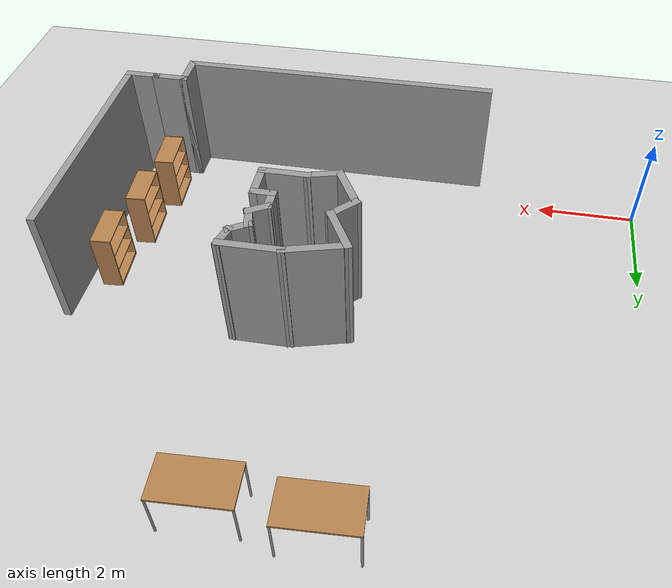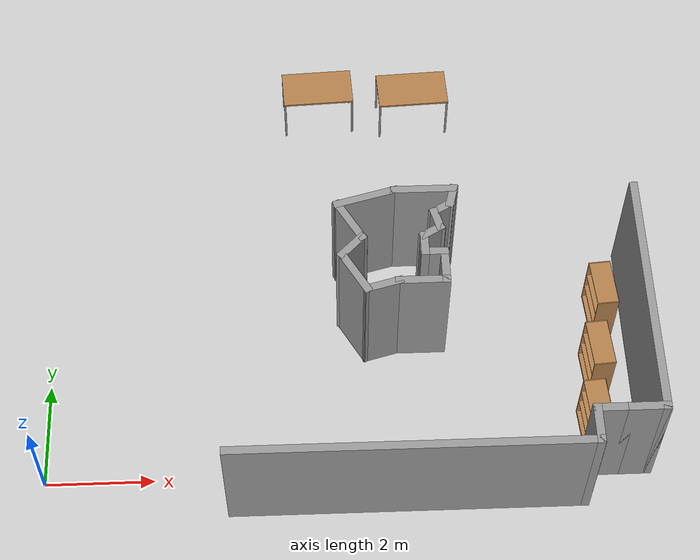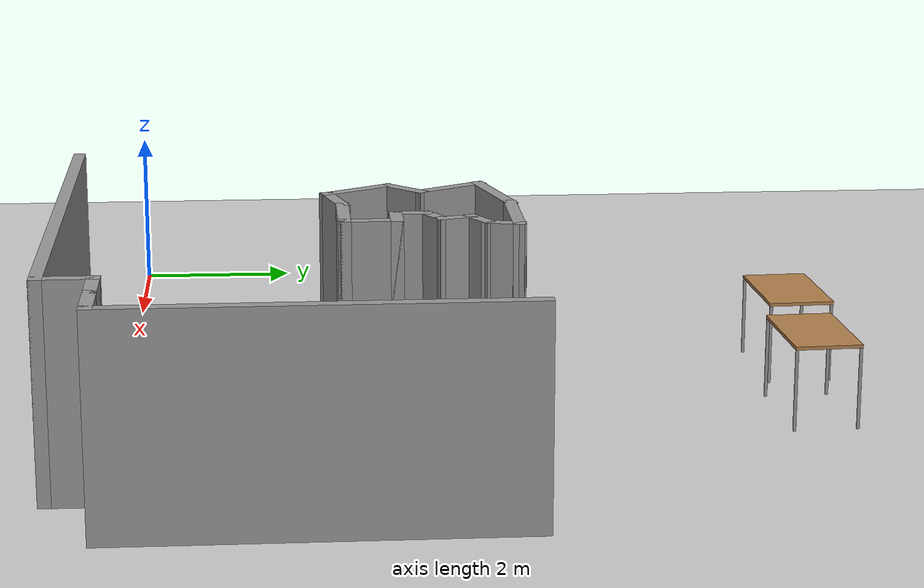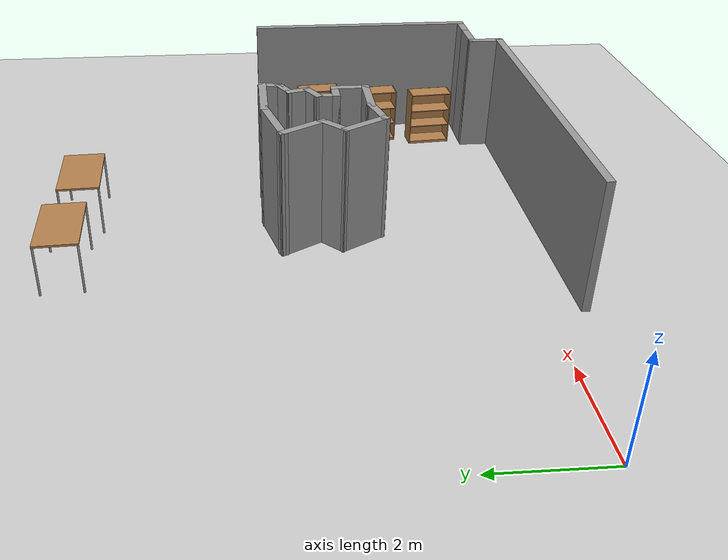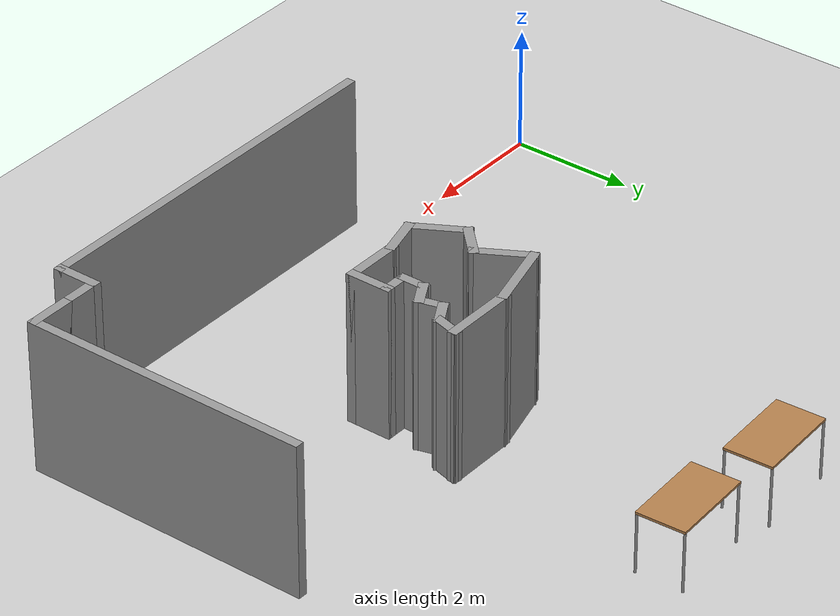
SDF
<sdf version="1.6">
 <world name="default">
  <model name="ground_plane">
   <static>1</static>
   <link name="link">
    <collision name="collision">
     <geometry><plane><normal>0 0 1</normal><size>100 100</size></plane></geometry>
     <surface><friction><ode><mu>100</mu><mu2>50</mu2></ode></friction></surface>
    </collision>
    <visual name="visual">
     <cast_shadows>0</cast_shadows>
     <geometry><plane><normal>0 0 1</normal><size>100 100</size></plane></geometry>
     <material>
      <script><uri>file://media/materials/scripts/gazebo.material</uri><name>Gazebo/Grey</name></script>
     </material>
    </visual>
   </link>
  </model>
  <model name="table_clone_1_clone">
   <static>0</static>
   <link name="link">
    <collision name="surface">
     <pose>0 0 1 0 -0 0</pose>
     <geometry><box><size>1.5 0.8 0.03</size></box></geometry>
     <surface><friction><ode><mu>0.6</mu><mu2>0.6</mu2></ode></friction></surface>
    </collision>
    <visual name="visual1">
     <pose>0 0 1 0 -0 0</pose>
     <geometry><box><size>1.4 0.8 0.04</size></box></geometry>
     <material>
      <script><uri>file://media/materials/scripts/gazebo.material</uri><name>Gazebo/Wood</name></script>
     </material>
    </visual>
    <collision name="front_left_leg">
     <pose>0.68 0.38 0.5 0 -0 0</pose>
     <geometry><cylinder><radius>0.02</radius><length>1</length></cylinder></geometry>
    </collision>
    <visual name="front_left_leg">
     <pose>0.68 0.38 0.5 0 -0 0</pose>
     <geometry><cylinder><radius>0.02</radius><length>1</length></cylinder></geometry>
     <material>
      <script><uri>file://media/materials/scripts/gazebo.material</uri><name>Gazebo/Grey</name></script>
     </material>
    </visual>
    <collision name="front_right_leg">
     <pose>0.68 -0.38 0.5 0 -0 0</pose>
     <geometry><cylinder><radius>0.02</radius><length>1</length></cylinder></geometry>
    </collision>
    <visual name="front_right_leg">
     <pose>0.68 -0.38 0.5 0 -0 0</pose>
     <geometry><cylinder><radius>0.02</radius><length>1</length></cylinder></geometry>
     <material>
      <script><uri>file://media/materials/scripts/gazebo.material</uri><name>Gazebo/Grey</name></script>
     </material>
    </visual>
    <collision name="back_right_leg">
     <pose>-0.68 -0.38 0.5 0 -0 0</pose>
     <geometry><cylinder><radius>0.02</radius><length>1</length></cylinder></geometry>
    </collision>
    <visual name="back_right_leg">
     <pose>-0.68 -0.38 0.5 0 -0 0</pose>
     <geometry><cylinder><radius>0.02</radius><length>1</length></cylinder></geometry>
     <material>
      <script><uri>file://media/materials/scripts/gazebo.material</uri><name>Gazebo/Grey</name></script>
     </material>
    </visual>
    <collision name="back_left_leg">
     <pose>-0.68 0.38 0.5 0 -0 0</pose>
     <geometry><cylinder><radius>0.02</radius><length>1</length></cylinder></geometry>
    </collision>
    <visual name="back_left_leg">
     <pose>-0.68 0.38 0.5 0 -0 0</pose>
     <geometry><cylinder><radius>0.02</radius><length>1</length></cylinder></geometry>
     <material>
      <script><uri>file://media/materials/scripts/gazebo.material</uri><name>Gazebo/Grey</name></script>
     </material>
    </visual>
    <inertial>
     <inertia><ixx>1</ixx><ixy>0</ixy><ixz>0</ixz><iyy>1</iyy><iyz>0</iyz><izz>1</izz></inertia>
     <mass>1</mass>
    </inertial>
   </link>
   <pose>5.17274 8.24378 -1e-05 0 -0 0.048714</pose>
  </model>
  <model name="table_clone_1_clone_0">
   <static>0</static>
   <link name="link">
    <collision name="surface">
     <pose>0 0 1 0 -0 0</pose>
     <geometry><box><size>1.5 0.8 0.03</size></box></geometry>
     <surface><friction><ode><mu>0.6</mu><mu2>0.6</mu2></ode></friction></surface>
    </collision>
    <visual name="visual1">
     <pose>0 0 1 0 -0 0</pose>
     <geometry><box><size>1.4 0.8 0.04</size></box></geometry>
     <material>
      <script><uri>file://media/materials/scripts/gazebo.material</uri><name>Gazebo/Wood</name></script>
     </material>
    </visual>
    <collision name="front_left_leg">
     <pose>0.68 0.38 0.5 0 -0 0</pose>
     <geometry><cylinder><radius>0.02</radius><length>1</length></cylinder></geometry>
    </collision>
    <visual name="front_left_leg">
     <pose>0.68 0.38 0.5 0 -0 0</pose>
     <geometry><cylinder><radius>0.02</radius><length>1</length></cylinder></geometry>
     <material>
      <script><uri>file://media/materials/scripts/gazebo.material</uri><name>Gazebo/Grey</name></script>
     </material>
    </visual>
    <collision name="front_right_leg">
     <pose>0.68 -0.38 0.5 0 -0 0</pose>
     <geometry><cylinder><radius>0.02</radius><length>1</length></cylinder></geometry>
    </collision>
    <visual name="front_right_leg">
     <pose>0.68 -0.38 0.5 0 -0 0</pose>
     <geometry><cylinder><radius>0.02</radius><length>1</length></cylinder></geometry>
     <material>
      <script><uri>file://media/materials/scripts/gazebo.material</uri><name>Gazebo/Grey</name></script>
     </material>
    </visual>
    <collision name="back_right_leg">
     <pose>-0.68 -0.38 0.5 0 -0 0</pose>
     <geometry><cylinder><radius>0.02</radius><length>1</length></cylinder></geometry>
    </collision>
    <visual name="back_right_leg">
     <pose>-0.68 -0.38 0.5 0 -0 0</pose>
     <geometry><cylinder><radius>0.02</radius><length>1</length></cylinder></geometry>
     <material>
      <script><uri>file://media/materials/scripts/gazebo.material</uri><name>Gazebo/Grey</name></script>
     </material>
    </visual>
    <collision name="back_left_leg">
     <pose>-0.68 0.38 0.5 0 -0 0</pose>
     <geometry><cylinder><radius>0.02</radius><length>1</length></cylinder></geometry>
    </collision>
    <visual name="back_left_leg">
     <pose>-0.68 0.38 0.5 0 -0 0</pose>
     <geometry><cylinder><radius>0.02</radius><length>1</length></cylinder></geometry>
     <material>
      <script><uri>file://media/materials/scripts/gazebo.material</uri><name>Gazebo/Grey</name></script>
     </material>
    </visual>
    <inertial>
     <inertia><ixx>1</ixx><ixy>0</ixy><ixz>0</ixz><iyy>1</iyy><iyz>0</iyz><izz>1</izz></inertia>
     <mass>1</mass>
    </inertial>
   </link>
   <pose>7.09873 8.15476 -1e-06 0 1e-06 0.048714</pose>
  </model>
  <model name="bookshelf">
   <static>1</static>
   <link name="link">
    <inertial><mass>1</mass></inertial>
    <collision name="back">
     <pose>0 0.005 0.6 0 -0 0</pose>
     <geometry><box><size>0.9 0.01 1.2</size></box></geometry>
    </collision>
    <visual name="visual1">
     <pose>0 0.005 0.6 0 -0 0</pose>
     <geometry><box><size>0.9 0.01 1.2</size></box></geometry>
     <material>
      <script><uri>file://media/materials/scripts/gazebo.material</uri><name>Gazebo/Wood</name></script>
     </material>
    </visual>
    <collision name="left_side">
     <pose>0.45 -0.195 0.6 0 -0 0</pose>
     <geometry><box><size>0.02 0.4 1.2</size></box></geometry>
    </collision>
    <visual name="visual2">
     <pose>0.45 -0.195 0.6 0 -0 0</pose>
     <geometry><box><size>0.02 0.4 1.2</size></box></geometry>
     <material>
      <script><uri>file://media/materials/scripts/gazebo.material</uri><name>Gazebo/Wood</name></script>
     </material>
    </visual>
    <collision name="right_side">
     <pose>-0.45 -0.195 0.6 0 -0 0</pose>
     <geometry><box><size>0.02 0.4 1.2</size></box></geometry>
    </collision>
    <visual name="visual3">
     <pose>-0.45 -0.195 0.6 0 -0 0</pose>
     <geometry><box><size>0.02 0.4 1.2</size></box></geometry>
     <material>
      <script><uri>file://media/materials/scripts/gazebo.material</uri><name>Gazebo/Wood</name></script>
     </material>
    </visual>
    <collision name="bottom">
     <pose>0 -0.195 0.03 0 -0 0</pose>
     <geometry><box><size>0.88 0.4 0.06</size></box></geometry>
    </collision>
    <visual name="visual4">
     <pose>0 -0.195 0.03 0 -0 0</pose>
     <geometry><box><size>0.88 0.4 0.06</size></box></geometry>
     <material>
      <script><uri>file://media/materials/scripts/gazebo.material</uri><name>Gazebo/Wood</name></script>
     </material>
    </visual>
    <collision name="top">
     <pose>0 -0.195 1.19 0 -0 0</pose>
     <geometry><box><size>0.88 0.4 0.02</size></box></geometry>
    </collision>
    <visual name="visual5">
     <pose>0 -0.195 1.19 0 -0 0</pose>
     <geometry><box><size>0.88 0.4 0.02</size></box></geometry>
     <material>
      <script><uri>file://media/materials/scripts/gazebo.material</uri><name>Gazebo/Wood</name></script>
     </material>
    </visual>
    <collision name="low_shelf">
     <pose>0 -0.195 0.43 0 -0 0</pose>
     <geometry><box><size>0.88 0.4 0.02</size></box></geometry>
    </collision>
    <visual name="visual6">
     <pose>0 -0.195 0.43 0 -0 0</pose>
     <geometry><box><size>0.88 0.4 0.02</size></box></geometry>
     <material>
      <script><uri>file://media/materials/scripts/gazebo.material</uri><name>Gazebo/Wood</name></script>
     </material>
    </visual>
    <collision name="high_shelf">
     <pose>0 -0.195 0.8 0 -0 0</pose>
     <geometry><box><size>0.88 0.4 0.02</size></box></geometry>
    </collision>
    <visual name="visual7">
     <pose>0 -0.195 0.8 0 -0 0</pose>
     <geometry><box><size>0.88 0.4 0.02</size></box></geometry>
     <material>
      <script><uri>file://media/materials/scripts/gazebo.material</uri><name>Gazebo/Wood</name></script>
     </material>
    </visual>
   </link>
   <pose>10.6229 3.26593 0 0 0 -1.49467</pose>
  </model>
  <model name="bookshelf_clone">
   <static>1</static>
   <link name="link">
    <inertial><mass>1</mass></inertial>
    <collision name="back">
     <pose>0 0.005 0.6 0 -0 0</pose>
     <geometry><box><size>0.9 0.01 1.2</size></box></geometry>
    </collision>
    <visual name="visual1">
     <pose>0 0.005 0.6 0 -0 0</pose>
     <geometry><box><size>0.9 0.01 1.2</size></box></geometry>
     <material>
      <script><uri>file://media/materials/scripts/gazebo.material</uri><name>Gazebo/Wood</name></script>
     </material>
    </visual>
    <collision name="left_side">
     <pose>0.45 -0.195 0.6 0 -0 0</pose>
     <geometry><box><size>0.02 0.4 1.2</size></box></geometry>
    </collision>
    <visual name="visual2">
     <pose>0.45 -0.195 0.6 0 -0 0</pose>
     <geometry><box><size>0.02 0.4 1.2</size></box></geometry>
     <material>
      <script><uri>file://media/materials/scripts/gazebo.material</uri><name>Gazebo/Wood</name></script>
     </material>
    </visual>
    <collision name="right_side">
     <pose>-0.45 -0.195 0.6 0 -0 0</pose>
     <geometry><box><size>0.02 0.4 1.2</size></box></geometry>
    </collision>
    <visual name="visual3">
     <pose>-0.45 -0.195 0.6 0 -0 0</pose>
     <geometry><box><size>0.02 0.4 1.2</size></box></geometry>
     <material>
      <script><uri>file://media/materials/scripts/gazebo.material</uri><name>Gazebo/Wood</name></script>
     </material>
    </visual>
    <collision name="bottom">
     <pose>0 -0.195 0.03 0 -0 0</pose>
     <geometry><box><size>0.88 0.4 0.06</size></box></geometry>
    </collision>
    <visual name="visual4">
     <pose>0 -0.195 0.03 0 -0 0</pose>
     <geometry><box><size>0.88 0.4 0.06</size></box></geometry>
     <material>
      <script><uri>file://media/materials/scripts/gazebo.material</uri><name>Gazebo/Wood</name></script>
     </material>
    </visual>
    <collision name="top">
     <pose>0 -0.195 1.19 0 -0 0</pose>
     <geometry><box><size>0.88 0.4 0.02</size></box></geometry>
    </collision>
    <visual name="visual5">
     <pose>0 -0.195 1.19 0 -0 0</pose>
     <geometry><box><size>0.88 0.4 0.02</size></box></geometry>
     <material>
      <script><uri>file://media/materials/scripts/gazebo.material</uri><name>Gazebo/Wood</name></script>
     </material>
    </visual>
    <collision name="low_shelf">
     <pose>0 -0.195 0.43 0 -0 0</pose>
     <geometry><box><size>0.88 0.4 0.02</size></box></geometry>
    </collision>
    <visual name="visual6">
     <pose>0 -0.195 0.43 0 -0 0</pose>
     <geometry><box><size>0.88 0.4 0.02</size></box></geometry>
     <material>
      <script><uri>file://media/materials/scripts/gazebo.material</uri><name>Gazebo/Wood</name></script>
     </material>
    </visual>
    <collision name="high_shelf">
     <pose>0 -0.195 0.8 0 -0 0</pose>
     <geometry><box><size>0.88 0.4 0.02</size></box></geometry>
    </collision>
    <visual name="visual7">
     <pose>0 -0.195 0.8 0 -0 0</pose>
     <geometry><box><size>0.88 0.4 0.02</size></box></geometry>
     <material>
      <script><uri>file://media/materials/scripts/gazebo.material</uri><name>Gazebo/Wood</name></script>
     </material>
    </visual>
   </link>
   <pose>10.4114 1.97434 0 0 0 -1.49467</pose>
  </model>
  <model name="bookshelf_clone_0">
   <static>1</static>
   <link name="link">
    <inertial><mass>1</mass></inertial>
    <collision name="back">
     <pose>0 0.005 0.6 0 -0 0</pose>
     <geometry><box><size>0.9 0.01 1.2</size></box></geometry>
    </collision>
    <visual name="visual1">
     <pose>0 0.005 0.6 0 -0 0</pose>
     <geometry><box><size>0.9 0.01 1.2</size></box></geometry>
     <material>
      <script><uri>file://media/materials/scripts/gazebo.material</uri><name>Gazebo/Wood</name></script>
     </material>
    </visual>
    <collision name="left_side">
     <pose>0.45 -0.195 0.6 0 -0 0</pose>
     <geometry><box><size>0.02 0.4 1.2</size></box></geometry>
    </collision>
    <visual name="visual2">
     <pose>0.45 -0.195 0.6 0 -0 0</pose>
     <geometry><box><size>0.02 0.4 1.2</size></box></geometry>
     <material>
      <script><uri>file://media/materials/scripts/gazebo.material</uri><name>Gazebo/Wood</name></script>
     </material>
    </visual>
    <collision name="right_side">
     <pose>-0.45 -0.195 0.6 0 -0 0</pose>
     <geometry><box><size>0.02 0.4 1.2</size></box></geometry>
    </collision>
    <visual name="visual3">
     <pose>-0.45 -0.195 0.6 0 -0 0</pose>
     <geometry><box><size>0.02 0.4 1.2</size></box></geometry>
     <material>
      <script><uri>file://media/materials/scripts/gazebo.material</uri><name>Gazebo/Wood</name></script>
     </material>
    </visual>
    <collision name="bottom">
     <pose>0 -0.195 0.03 0 -0 0</pose>
     <geometry><box><size>0.88 0.4 0.06</size></box></geometry>
    </collision>
    <visual name="visual4">
     <pose>0 -0.195 0.03 0 -0 0</pose>
     <geometry><box><size>0.88 0.4 0.06</size></box></geometry>
     <material>
      <script><uri>file://media/materials/scripts/gazebo.material</uri><name>Gazebo/Wood</name></script>
     </material>
    </visual>
    <collision name="top">
     <pose>0 -0.195 1.19 0 -0 0</pose>
     <geometry><box><size>0.88 0.4 0.02</size></box></geometry>
    </collision>
    <visual name="visual5">
     <pose>0 -0.195 1.19 0 -0 0</pose>
     <geometry><box><size>0.88 0.4 0.02</size></box></geometry>
     <material>
      <script><uri>file://media/materials/scripts/gazebo.material</uri><name>Gazebo/Wood</name></script>
     </material>
    </visual>
    <collision name="low_shelf">
     <pose>0 -0.195 0.43 0 -0 0</pose>
     <geometry><box><size>0.88 0.4 0.02</size></box></geometry>
    </collision>
    <visual name="visual6">
     <pose>0 -0.195 0.43 0 -0 0</pose>
     <geometry><box><size>0.88 0.4 0.02</size></box></geometry>
     <material>
      <script><uri>file://media/materials/scripts/gazebo.material</uri><name>Gazebo/Wood</name></script>
     </material>
    </visual>
    <collision name="high_shelf">
     <pose>0 -0.195 0.8 0 -0 0</pose>
     <geometry><box><size>0.88 0.4 0.02</size></box></geometry>
    </collision>
    <visual name="visual7">
     <pose>0 -0.195 0.8 0 -0 0</pose>
     <geometry><box><size>0.88 0.4 0.02</size></box></geometry>
     <material>
      <script><uri>file://media/materials/scripts/gazebo.material</uri><name>Gazebo/Wood</name></script>
     </material>
    </visual>
   </link>
   <pose>10.2428 0.749843 0 0 0 -1.49467</pose>
  </model>
  <model name="paredes_simplepilab_0">
   <link name="Wall_19">
    <pose>2.05592 -6.19172 0 0 -0 0</pose>
    <visual name="Wall_19_Visual">
     <pose>0 0 1.25 0 -0 0</pose>
     <geometry><box><size>6.5 0.15 2.5</size></box></geometry>
     <material>
      <script><uri>file://media/materials/scripts/gazebo.material</uri><name>Gazebo/Grey</name></script>
      <ambient>1 1 1 1</ambient>
      <diffuse>0.7 0.7 0.7 1</diffuse>
      <specular>0.01 0.01 0.01 1</specular>
      <emissive>0 0 0 1</emissive>
     </material>
    </visual>
    <collision name="Wall_19_Collision">
     <pose>0 0 1.25 0 -0 0</pose>
     <geometry><box><size>6.5 0.15 2.5</size></box></geometry>
     <surface>
      <friction>
       <ode><mu>1</mu><mu2>1</mu2><fdir1>0 0 0</fdir1><slip1>0</slip1><slip2>0</slip2></ode>
       <torsional>
        <coefficient>1</coefficient>
        <patch_radius>0</patch_radius>
        <surface_radius>0</surface_radius>
        <use_patch_radius>1</use_patch_radius>
        <ode><slip>0</slip></ode>
       </torsional>
      </friction>
      <bounce><restitution_coefficient>0</restitution_coefficient><threshold>1e+06</threshold></bounce>
      <contact>
       <collide_without_contact>0</collide_without_contact>
       <collide_without_contact_bitmask>1</collide_without_contact_bitmask>
       <collide_bitmask>1</collide_bitmask>
       <ode>
        <soft_cfm>0</soft_cfm>
        <soft_erp>0.2</soft_erp>
        <kp>1e+13</kp>
        <kd>1</kd>
        <max_vel>0.01</max_vel>
        <min_depth>0</min_depth>
       </ode>
       <bullet>
        <split_impulse>1</split_impulse>
        <split_impulse_penetration_threshold>-0.01</split_impulse_penetration_threshold>
        <soft_cfm>0</soft_cfm>
        <soft_erp>0.2</soft_erp>
        <kp>1e+13</kp>
        <kd>1</kd>
       </bullet>
      </contact>
     </surface>
    </collision>
   </link>
   <link name="Wall_20">
    <pose>5.23092 -5.89172 0 0 -0 1.5708</pose>
    <visual name="Wall_20_Visual">
     <pose>0 0 1.25 0 -0 0</pose>
     <geometry><box><size>0.75 0.15 2.5</size></box></geometry>
     <material>
      <script><uri>file://media/materials/scripts/gazebo.material</uri><name>Gazebo/Grey</name></script>
      <ambient>1 1 1 1</ambient>
      <diffuse>0.7 0.7 0.7 1</diffuse>
      <specular>0.01 0.01 0.01 1</specular>
      <emissive>0 0 0 1</emissive>
     </material>
    </visual>
    <collision name="Wall_20_Collision">
     <pose>0 0 1.25 0 -0 0</pose>
     <geometry><box><size>0.75 0.15 2.5</size></box></geometry>
     <surface>
      <friction>
       <ode><mu>1</mu><mu2>1</mu2><fdir1>0 0 0</fdir1><slip1>0</slip1><slip2>0</slip2></ode>
       <torsional>
        <coefficient>1</coefficient>
        <patch_radius>0</patch_radius>
        <surface_radius>0</surface_radius>
        <use_patch_radius>1</use_patch_radius>
        <ode><slip>0</slip></ode>
       </torsional>
      </friction>
      <bounce><restitution_coefficient>0</restitution_coefficient><threshold>1e+06</threshold></bounce>
      <contact>
       <collide_without_contact>0</collide_without_contact>
       <collide_without_contact_bitmask>1</collide_without_contact_bitmask>
       <collide_bitmask>1</collide_bitmask>
       <ode>
        <soft_cfm>0</soft_cfm>
        <soft_erp>0.2</soft_erp>
        <kp>1e+13</kp>
        <kd>1</kd>
        <max_vel>0.01</max_vel>
        <min_depth>0</min_depth>
       </ode>
       <bullet>
        <split_impulse>1</split_impulse>
        <split_impulse_penetration_threshold>-0.01</split_impulse_penetration_threshold>
        <soft_cfm>0</soft_cfm>
        <soft_erp>0.2</soft_erp>
        <kp>1e+13</kp>
        <kd>1</kd>
       </bullet>
      </contact>
     </surface>
    </collision>
   </link>
   <link name="Wall_21">
    <pose>5.53092 -5.59172 0 0 -0 0</pose>
    <visual name="Wall_21_Visual">
     <pose>0 0 1.25 0 -0 0</pose>
     <geometry><box><size>0.75 0.15 2.5</size></box></geometry>
     <material>
      <script><uri>file://media/materials/scripts/gazebo.material</uri><name>Gazebo/Grey</name></script>
      <ambient>1 1 1 1</ambient>
      <diffuse>0.7 0.7 0.7 1</diffuse>
      <specular>0.01 0.01 0.01 1</specular>
      <emissive>0 0 0 1</emissive>
     </material>
    </visual>
    <collision name="Wall_21_Collision">
     <pose>0 0 1.25 0 -0 0</pose>
     <geometry><box><size>0.75 0.15 2.5</size></box></geometry>
     <surface>
      <friction>
       <ode><mu>1</mu><mu2>1</mu2><fdir1>0 0 0</fdir1><slip1>0</slip1><slip2>0</slip2></ode>
       <torsional>
        <coefficient>1</coefficient>
        <patch_radius>0</patch_radius>
        <surface_radius>0</surface_radius>
        <use_patch_radius>1</use_patch_radius>
        <ode><slip>0</slip></ode>
       </torsional>
      </friction>
      <bounce><restitution_coefficient>0</restitution_coefficient><threshold>1e+06</threshold></bounce>
      <contact>
       <collide_without_contact>0</collide_without_contact>
       <collide_without_contact_bitmask>1</collide_without_contact_bitmask>
       <collide_bitmask>1</collide_bitmask>
       <ode>
        <soft_cfm>0</soft_cfm>
        <soft_erp>0.2</soft_erp>
        <kp>1e+13</kp>
        <kd>1</kd>
        <max_vel>0.01</max_vel>
        <min_depth>0</min_depth>
       </ode>
       <bullet>
        <split_impulse>1</split_impulse>
        <split_impulse_penetration_threshold>-0.01</split_impulse_penetration_threshold>
        <soft_cfm>0</soft_cfm>
        <soft_erp>0.2</soft_erp>
        <kp>1e+13</kp>
        <kd>1</kd>
       </bullet>
      </contact>
     </surface>
    </collision>
   </link>
   <link name="Wall_22">
    <pose>6.13092 -5.59172 0 0 -0 0</pose>
    <visual name="Wall_22_Visual">
     <pose>0 0 1.25 0 -0 0</pose>
     <geometry><box><size>0.75 0.15 2.5</size></box></geometry>
     <material>
      <script><uri>file://media/materials/scripts/gazebo.material</uri><name>Gazebo/Grey</name></script>
      <ambient>1 1 1 1</ambient>
      <diffuse>0.7 0.7 0.7 1</diffuse>
      <specular>0.01 0.01 0.01 1</specular>
      <emissive>0 0 0 1</emissive>
     </material>
    </visual>
    <collision name="Wall_22_Collision">
     <pose>0 0 1.25 0 -0 0</pose>
     <geometry><box><size>0.75 0.15 2.5</size></box></geometry>
     <surface>
      <friction>
       <ode><mu>1</mu><mu2>1</mu2><fdir1>0 0 0</fdir1><slip1>0</slip1><slip2>0</slip2></ode>
       <torsional>
        <coefficient>1</coefficient>
        <patch_radius>0</patch_radius>
        <surface_radius>0</surface_radius>
        <use_patch_radius>1</use_patch_radius>
        <ode><slip>0</slip></ode>
       </torsional>
      </friction>
      <bounce><restitution_coefficient>0</restitution_coefficient><threshold>1e+06</threshold></bounce>
      <contact>
       <collide_without_contact>0</collide_without_contact>
       <collide_without_contact_bitmask>1</collide_without_contact_bitmask>
       <collide_bitmask>1</collide_bitmask>
       <ode>
        <soft_cfm>0</soft_cfm>
        <soft_erp>0.2</soft_erp>
        <kp>1e+13</kp>
        <kd>1</kd>
        <max_vel>0.01</max_vel>
        <min_depth>0</min_depth>
       </ode>
       <bullet>
        <split_impulse>1</split_impulse>
        <split_impulse_penetration_threshold>-0.01</split_impulse_penetration_threshold>
        <soft_cfm>0</soft_cfm>
        <soft_erp>0.2</soft_erp>
        <kp>1e+13</kp>
        <kd>1</kd>
       </bullet>
      </contact>
     </surface>
    </collision>
   </link>
   <link name="Wall_23">
    <pose>6.43092 -3.29172 0 0 -0 1.5708</pose>
    <visual name="Wall_23_Visual">
     <pose>0 0 1.25 0 -0 0</pose>
     <geometry><box><size>4.75 0.15 2.5</size></box></geometry>
     <material>
      <script><uri>file://media/materials/scripts/gazebo.material</uri><name>Gazebo/Grey</name></script>
      <ambient>1 1 1 1</ambient>
      <diffuse>0.7 0.7 0.7 1</diffuse>
      <specular>0.01 0.01 0.01 1</specular>
      <emissive>0 0 0 1</emissive>
     </material>
    </visual>
    <collision name="Wall_23_Collision">
     <pose>0 0 1.25 0 -0 0</pose>
     <geometry><box><size>4.75 0.15 2.5</size></box></geometry>
     <surface>
      <friction>
       <ode><mu>1</mu><mu2>1</mu2><fdir1>0 0 0</fdir1><slip1>0</slip1><slip2>0</slip2></ode>
       <torsional>
        <coefficient>1</coefficient>
        <patch_radius>0</patch_radius>
        <surface_radius>0</surface_radius>
        <use_patch_radius>1</use_patch_radius>
        <ode><slip>0</slip></ode>
       </torsional>
      </friction>
      <bounce><restitution_coefficient>0</restitution_coefficient><threshold>1e+06</threshold></bounce>
      <contact>
       <collide_without_contact>0</collide_without_contact>
       <collide_without_contact_bitmask>1</collide_without_contact_bitmask>
       <collide_bitmask>1</collide_bitmask>
       <ode>
        <soft_cfm>0</soft_cfm>
        <soft_erp>0.2</soft_erp>
        <kp>1e+13</kp>
        <kd>1</kd>
        <max_vel>0.01</max_vel>
        <min_depth>0</min_depth>
       </ode>
       <bullet>
        <split_impulse>1</split_impulse>
        <split_impulse_penetration_threshold>-0.01</split_impulse_penetration_threshold>
        <soft_cfm>0</soft_cfm>
        <soft_erp>0.2</soft_erp>
        <kp>1e+13</kp>
        <kd>1</kd>
       </bullet>
      </contact>
     </surface>
    </collision>
   </link>
   <static>1</static>
   <pose>4.53146 5.52753 0 0 -0 0</pose>
  </model>
  <model name="episimplelab_obstaculoscentro">
   <pose>6.53838 3.52254 0 0 -0 0</pose>
   <link name="Wall_66">
    <collision name="Wall_66_Collision">
     <geometry><box><size>1 0.15 2.5</size></box></geometry>
     <pose>0 0 1.25 0 -0 0</pose>
    </collision>
    <visual name="Wall_66_Visual">
     <pose>0 0 1.25 0 -0 0</pose>
     <geometry><box><size>1 0.15 2.5</size></box></geometry>
     <material>
      <script><uri>file://media/materials/scripts/gazebo.material</uri><name>Gazebo/Grey</name></script>
      <ambient>0.392157 0.388235 0.423529 1</ambient>
     </material>
    </visual>
    <pose>-0.863461 0.418256 0 0 -0 2.0944</pose>
   </link>
   <link name="Wall_67">
    <collision name="Wall_67_Collision">
     <geometry><box><size>1.25 0.15 2.5</size></box></geometry>
     <pose>0 0 1.25 0 -0 0</pose>
    </collision>
    <visual name="Wall_67_Visual">
     <pose>0 0 1.25 0 -0 0</pose>
     <geometry><box><size>1.25 0.15 2.5</size></box></geometry>
     <material>
      <script><uri>file://media/materials/scripts/gazebo.material</uri><name>Gazebo/Grey</name></script>
      <ambient>0.392157 0.388235 0.423529 1</ambient>
     </material>
    </visual>
    <pose>-0.544702 0.928667 0 0 -0 0.261799</pose>
   </link>
   <link name="Wall_68">
    <collision name="Wall_68_Collision">
     <geometry><box><size>1.25 0.15 2.5</size></box></geometry>
     <pose>0 0 1.25 0 -0 0</pose>
    </collision>
    <visual name="Wall_68_Visual">
     <pose>0 0 1.25 0 -0 0</pose>
     <geometry><box><size>1.25 0.15 2.5</size></box></geometry>
     <material>
      <script><uri>file://media/materials/scripts/gazebo.material</uri><name>Gazebo/Grey</name></script>
      <ambient>0.392157 0.388235 0.423529 1</ambient>
     </material>
    </visual>
    <pose>0.536557 1.07102 0 0 -0 0</pose>
   </link>
   <link name="Wall_69">
    <collision name="Wall_69_Collision">
     <geometry><box><size>0.5 0.15 2.5</size></box></geometry>
     <pose>0 0 1.25 0 -0 0</pose>
    </collision>
    <visual name="Wall_69_Visual">
     <pose>0 0 1.25 0 -0 0</pose>
     <geometry><box><size>0.5 0.15 2.5</size></box></geometry>
     <material>
      <script><uri>file://media/materials/scripts/gazebo.material</uri><name>Gazebo/Grey</name></script>
      <ambient>0.392157 0.388235 0.423529 1</ambient>
     </material>
    </visual>
    <pose>1.04126 0.901981 0 0 0 -1.8326</pose>
   </link>
   <link name="Wall_71">
    <collision name="Wall_71_Collision">
     <geometry><box><size>0.5 0.15 2.5</size></box></geometry>
     <pose>0 0 1.25 0 -0 0</pose>
    </collision>
    <visual name="Wall_71_Visual">
     <pose>0 0 1.25 0 -0 0</pose>
     <geometry><box><size>0.5 0.15 2.5</size></box></geometry>
     <material>
      <script><uri>file://media/materials/scripts/gazebo.material</uri><name>Gazebo/Grey</name></script>
      <ambient>1 1 1 1</ambient>
     </material>
    </visual>
    <pose>0.844416 0.645444 0 0 0 -2.61799</pose>
   </link>
   <link name="Wall_72">
    <collision name="Wall_72_Collision">
     <geometry><box><size>0.5 0.15 2.5</size></box></geometry>
     <pose>0 0 1.25 0 -0 0</pose>
    </collision>
    <visual name="Wall_72_Visual">
     <pose>0 0 1.25 0 -0 0</pose>
     <geometry><box><size>0.5 0.15 2.5</size></box></geometry>
     <material>
      <script><uri>file://media/materials/scripts/gazebo.material</uri><name>Gazebo/Grey</name></script>
      <ambient>0.392157 0.388235 0.423529 1</ambient>
     </material>
    </visual>
    <pose>0.738155 0.388907 0 0 0 -1.309</pose>
   </link>
   <link name="Wall_73">
    <collision name="Wall_73_Collision">
     <geometry><box><size>0.5 0.15 2.5</size></box></geometry>
     <pose>0 0 1.25 0 -0 0</pose>
    </collision>
    <visual name="Wall_73_Visual">
     <pose>0 0 1.25 0 -0 0</pose>
     <geometry><box><size>0.5 0.15 2.5</size></box></geometry>
     <material>
      <script><uri>file://media/materials/scripts/gazebo.material</uri><name>Gazebo/Grey</name></script>
      <ambient>1 1 1 1</ambient>
     </material>
    </visual>
    <pose>0.631894 0.13237 0 0 0 -2.61799</pose>
   </link>
   <link name="Wall_74">
    <collision name="Wall_74_Collision">
     <geometry><box><size>0.5 0.15 2.5</size></box></geometry>
     <pose>0 0 1.25 0 -0 0</pose>
    </collision>
    <visual name="Wall_74_Visual">
     <pose>0 0 1.25 0 -0 0</pose>
     <geometry><box><size>0.5 0.15 2.5</size></box></geometry>
     <material>
      <script><uri>file://media/materials/scripts/gazebo.material</uri><name>Gazebo/Grey</name></script>
      <ambient>1 1 1 1</ambient>
     </material>
    </visual>
    <pose>0.48034 -0.13013 0 0 0 -1.5708</pose>
   </link>
   <link name="Wall_75">
    <collision name="Wall_75_Collision">
     <geometry><box><size>0.5 0.15 2.5</size></box></geometry>
     <pose>0 0 1.25 0 -0 0</pose>
    </collision>
    <visual name="Wall_75_Visual">
     <pose>0 0 1.25 0 -0 0</pose>
     <geometry><box><size>0.5 0.15 2.5</size></box></geometry>
     <material>
      <script><uri>file://media/materials/scripts/gazebo.material</uri><name>Gazebo/Grey</name></script>
      <ambient>1 1 1 1</ambient>
     </material>
    </visual>
    <pose>0.655339 -0.30513 0 0 -0 0</pose>
   </link>
   <link name="Wall_76">
    <collision name="Wall_76_Collision">
     <geometry><box><size>0.75 0.15 2.5</size></box></geometry>
     <pose>0 0 1.25 0 -0 0</pose>
    </collision>
    <visual name="Wall_76_Visual">
     <pose>0 0 1.25 0 -0 0</pose>
     <geometry><box><size>0.75 0.15 2.5</size></box></geometry>
     <material>
      <script><uri>file://media/materials/scripts/gazebo.material</uri><name>Gazebo/Grey</name></script>
      <ambient>1 1 1 1</ambient>
     </material>
    </visual>
    <pose>0.83034 -0.60513 0 0 0 -1.5708</pose>
   </link>
   <link name="Wall_78">
    <collision name="Wall_78_Collision">
     <geometry><box><size>1 0.15 2.5</size></box></geometry>
     <pose>0 0 1.25 0 -0 0</pose>
    </collision>
    <visual name="Wall_78_Visual">
     <pose>0 0 1.25 0 -0 0</pose>
     <geometry><box><size>1 0.15 2.5</size></box></geometry>
     <material>
      <script><uri>file://media/materials/scripts/gazebo.material</uri><name>Gazebo/Grey</name></script>
      <ambient>1 1 1 1</ambient>
     </material>
    </visual>
    <pose>0.405339 -0.90513 0 0 -0 3.14159</pose>
   </link>
   <link name="Wall_79">
    <collision name="Wall_79_Collision">
     <geometry><box><size>0.75 0.15 2.5</size></box></geometry>
     <pose>0 0 1.25 0 -0 0</pose>
    </collision>
    <visual name="Wall_79_Visual">
     <pose>0 0 1.25 0 -0 0</pose>
     <geometry><box><size>0.75 0.15 2.5</size></box></geometry>
     <material>
      <script><uri>file://media/materials/scripts/gazebo.material</uri><name>Gazebo/Grey</name></script>
      <ambient>1 1 1 1</ambient>
     </material>
    </visual>
    <pose>-0.309438 -0.982776 0 0 0 -2.87979</pose>
   </link>
   <link name="Wall_80">
    <collision name="Wall_80_Collision">
     <geometry><box><size>1 0.15 2.5</size></box></geometry>
     <pose>0 0 1.25 0 -0 0</pose>
    </collision>
    <visual name="Wall_80_Visual">
     <pose>0 0 1.25 0 -0 0</pose>
     <geometry><box><size>1 0.15 2.5</size></box></geometry>
     <material>
      <script><uri>file://media/materials/scripts/gazebo.material</uri><name>Gazebo/Grey</name></script>
      <ambient>1 1 1 1</ambient>
     </material>
    </visual>
    <pose>-0.811716 -0.692361 0 0 -0 2.0944</pose>
   </link>
   <link name="Wall_81">
    <collision name="Wall_81_Collision">
     <geometry><box><size>0.67874 0.15 2.5</size></box></geometry>
     <pose>0 0 1.25 0 -0 0</pose>
    </collision>
    <visual name="Wall_81_Visual">
     <pose>0 0 1.25 0 -0 0</pose>
     <geometry><box><size>0.67874 0.15 2.5</size></box></geometry>
     <material>
      <script><uri>file://media/materials/scripts/gazebo.material</uri><name>Gazebo/Grey</name></script>
      <ambient>0.392157 0.388235 0.423529 1</ambient>
     </material>
    </visual>
    <pose>-0.837589 -0.137052 0 0 -0 0.787057</pose>
   </link>
   <static>1</static>
  </model>
 </world>
</sdf>
